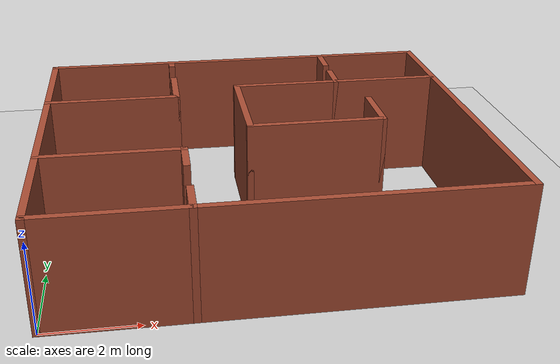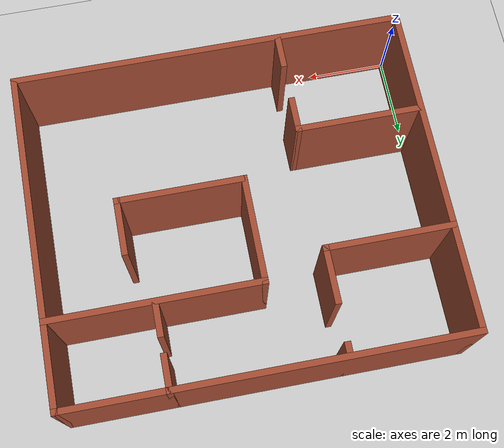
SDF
<sdf version="1.7">
 <world name="default">
  <light name="sun" type="directional">
   <pose>0 0 10 0 -0 0</pose>
   <diffuse>0.8 0.8 0.8 1</diffuse>
   <specular>0.2 0.2 0.2 1</specular>
   <attenuation>
    <range>1000</range>
    <constant>0.9</constant>
    <linear>0.01</linear>
    <quadratic>0.001</quadratic>
   </attenuation>
   <direction>-0.5 0.1 -0.9</direction>
   <spot><inner_angle>0</inner_angle><outer_angle>0</outer_angle><falloff>0</falloff></spot>
  </light>
  <model name="ground_plane">
   <static>1</static>
   <link name="link">
    <collision name="collision">
     <geometry><plane><normal>0 0 1</normal><size>100 100</size></plane></geometry>
     <surface>
      <contact><collide_bitmask>65535</collide_bitmask></contact>
      <friction><ode><mu>100</mu><mu2>50</mu2></ode></friction>
     </surface>
    </collision>
    <visual name="visual">
     <cast_shadows>0</cast_shadows>
     <geometry><plane><normal>0 0 1</normal><size>100 100</size></plane></geometry>
     <material>
      <script><uri>file://media/materials/scripts/gazebo.material</uri><name>Gazebo/Grey</name></script>
     </material>
    </visual>
   </link>
  </model>
  <gravity>0 0 -9.8</gravity>
  <magnetic_field>6e-06 2.3e-05 -4.2e-05</magnetic_field>
  <atmosphere type="adiabatic"/>
  <physics type="ode">
   <max_step_size>0.001</max_step_size>
   <real_time_factor>1</real_time_factor>
   <real_time_update_rate>1000</real_time_update_rate>
  </physics>
  <scene><ambient>0.4 0.4 0.4 1</ambient><background>0.7 0.7 0.7 1</background><shadows>1</shadows></scene>
  <spherical_coordinates>
   <surface_model>EARTH_WGS84</surface_model>
   <latitude_deg>0</latitude_deg>
   <longitude_deg>0</longitude_deg>
   <elevation>0</elevation>
   <heading_deg>0</heading_deg>
  </spherical_coordinates>
  <model name="rcp_building">
   <pose>4.75 4 0 0 -0 0</pose>
   <link name="Wall_11">
    <collision name="Wall_11_Collision">
     <geometry><box><size>9.65 0.15 2.5</size></box></geometry>
     <pose>0 0 1.25 0 -0 0</pose>
    </collision>
    <visual name="Wall_11_Visual">
     <pose>0 0 1.25 0 -0 0</pose>
     <geometry><box><size>9.65 0.15 2.5</size></box></geometry>
     <material>
      <script><uri>file://media/materials/scripts/gazebo.material</uri><name>Gazebo/Bricks</name></script>
      <ambient>1 1 1 1</ambient>
     </material>
     <meta><layer>0</layer></meta>
    </visual>
    <pose>-0 4 0 0 -0 0</pose>
   </link>
   <link name="Wall_12">
    <collision name="Wall_12_Collision">
     <geometry><box><size>8.15 0.15 2.5</size></box></geometry>
     <pose>0 0 1.25 0 -0 0</pose>
    </collision>
    <visual name="Wall_12_Visual">
     <pose>0 0 1.25 0 -0 0</pose>
     <geometry><box><size>8.15 0.15 2.5</size></box></geometry>
     <material>
      <script><uri>file://media/materials/scripts/gazebo.material</uri><name>Gazebo/Bricks</name></script>
      <ambient>1 1 1 1</ambient>
     </material>
     <meta><layer>0</layer></meta>
    </visual>
    <pose>4.75 -0 0 0 -0 -1.5708</pose>
   </link>
   <link name="Wall_13">
    <collision name="Wall_13_Collision">
     <geometry><box><size>9.65 0.15 2.5</size></box></geometry>
     <pose>0 0 1.25 0 -0 0</pose>
    </collision>
    <visual name="Wall_13_Visual">
     <pose>0 0 1.25 0 -0 0</pose>
     <geometry><box><size>9.65 0.15 2.5</size></box></geometry>
     <material>
      <script><uri>file://media/materials/scripts/gazebo.material</uri><name>Gazebo/Bricks</name></script>
      <ambient>1 1 1 1</ambient>
     </material>
     <meta><layer>0</layer></meta>
    </visual>
    <pose>-0 -4 0 0 -0 3.14159</pose>
   </link>
   <link name="Wall_15">
    <collision name="Wall_15_Collision">
     <geometry><box><size>3.15 0.15 2.5</size></box></geometry>
     <pose>0 0 1.25 0 -0 0</pose>
    </collision>
    <visual name="Wall_15_Visual">
     <pose>0 0 1.25 0 -0 0</pose>
     <geometry><box><size>3.15 0.15 2.5</size></box></geometry>
     <material>
      <script><uri>file://media/materials/scripts/gazebo.material</uri><name>Gazebo/Bricks</name></script>
      <ambient>1 1 1 1</ambient>
     </material>
     <meta><layer>0</layer></meta>
    </visual>
    <pose>-3.25 1.5 0 0 -0 0</pose>
   </link>
   <link name="Wall_16">
    <collision name="Wall_16_Collision">
     <geometry><box><size>1.4 0.15 2.5</size></box></geometry>
     <pose>0 0 1.25 0 -0 0</pose>
    </collision>
    <visual name="Wall_16_Visual">
     <pose>0 0 1.25 0 -0 0</pose>
     <geometry><box><size>1.4 0.15 2.5</size></box></geometry>
     <material>
      <script><uri>file://media/materials/scripts/gazebo.material</uri><name>Gazebo/Bricks</name></script>
      <ambient>1 1 1 1</ambient>
     </material>
     <meta><layer>0</layer></meta>
    </visual>
    <pose>-1.75 2.125 0 0 -0 1.5708</pose>
   </link>
   <link name="Wall_18">
    <collision name="Wall_18_Collision">
     <geometry><box><size>0.4 0.15 2.5</size></box></geometry>
     <pose>0 0 1.25 0 -0 0</pose>
    </collision>
    <visual name="Wall_18_Visual">
     <pose>0 0 1.25 0 -0 0</pose>
     <geometry><box><size>0.4 0.15 2.5</size></box></geometry>
     <material>
      <script><uri>file://media/materials/scripts/gazebo.material</uri><name>Gazebo/Bricks</name></script>
      <ambient>1 1 1 1</ambient>
     </material>
     <meta><layer>0</layer></meta>
    </visual>
    <pose>-1.75 3.875 0 0 -0 1.5708</pose>
   </link>
   <link name="Wall_20">
    <collision name="Wall_20_Collision">
     <geometry><box><size>0.9 0.15 2.5</size></box></geometry>
     <pose>0 0 1.25 0 -0 0</pose>
    </collision>
    <visual name="Wall_20_Visual">
     <pose>0 0 1.25 0 -0 0</pose>
     <geometry><box><size>0.9 0.15 2.5</size></box></geometry>
     <material>
      <script><uri>file://media/materials/scripts/gazebo.material</uri><name>Gazebo/Bricks</name></script>
      <ambient>1 1 1 1</ambient>
     </material>
     <meta><layer>0</layer></meta>
    </visual>
    <pose>2.25 3.625 0 0 -0 -1.5708</pose>
   </link>
   <link name="Wall_22">
    <collision name="Wall_22_Collision">
     <geometry><box><size>0.9 0.15 2.5</size></box></geometry>
     <pose>0 0 1.25 0 -0 0</pose>
    </collision>
    <visual name="Wall_22_Visual">
     <pose>0 0 1.25 0 -0 0</pose>
     <geometry><box><size>0.9 0.15 2.5</size></box></geometry>
     <material>
      <script><uri>file://media/materials/scripts/gazebo.material</uri><name>Gazebo/Bricks</name></script>
      <ambient>1 1 1 1</ambient>
     </material>
     <meta><layer>0</layer></meta>
    </visual>
    <pose>2.25 2.375 0 0 -0 -1.5708</pose>
   </link>
   <link name="Wall_24">
    <collision name="Wall_24_Collision">
     <geometry><box><size>5.15 0.15 2.5</size></box></geometry>
     <pose>0 0 1.25 0 -0 0</pose>
    </collision>
    <visual name="Wall_24_Visual">
     <pose>0 0 1.25 0 -0 0</pose>
     <geometry><box><size>5.15 0.15 2.5</size></box></geometry>
     <material>
      <script><uri>file://media/materials/scripts/gazebo.material</uri><name>Gazebo/Bricks</name></script>
      <ambient>1 1 1 1</ambient>
     </material>
     <meta><layer>0</layer></meta>
    </visual>
    <pose>2.25 2 0 0 -0 0</pose>
   </link>
   <link name="Wall_26">
    <collision name="Wall_26_Collision">
     <geometry><box><size>2.65 0.15 2.5</size></box></geometry>
     <pose>0 0 1.25 0 -0 0</pose>
    </collision>
    <visual name="Wall_26_Visual">
     <pose>0 0 1.25 0 -0 0</pose>
     <geometry><box><size>2.65 0.15 2.5</size></box></geometry>
     <material>
      <script><uri>file://media/materials/scripts/gazebo.material</uri><name>Gazebo/Bricks</name></script>
      <ambient>1 1 1 1</ambient>
     </material>
     <meta><layer>0</layer></meta>
    </visual>
    <pose>-0.25 0.75 0 0 -0 -1.5708</pose>
   </link>
   <link name="Wall_31">
    <collision name="Wall_31_Collision">
     <geometry><box><size>3.15 0.15 2.5</size></box></geometry>
     <pose>0 0 1.25 0 -0 0</pose>
    </collision>
    <visual name="Wall_31_Visual">
     <pose>0 0 1.25 0 -0 0</pose>
     <geometry><box><size>3.15 0.15 2.5</size></box></geometry>
     <material>
      <script><uri>file://media/materials/scripts/gazebo.material</uri><name>Gazebo/Bricks</name></script>
      <ambient>1 1 1 1</ambient>
     </material>
     <meta><layer>0</layer></meta>
    </visual>
    <pose>-3.25 -1.5 0 0 -0 0</pose>
   </link>
   <link name="Wall_34">
    <collision name="Wall_34_Collision">
     <geometry><box><size>0.9 0.15 2.5</size></box></geometry>
     <pose>0 0 1.25 0 -0 0</pose>
    </collision>
    <visual name="Wall_34_Visual">
     <pose>0 0 1.25 0 -0 0</pose>
     <geometry><box><size>0.9 0.15 2.5</size></box></geometry>
     <material>
      <script><uri>file://media/materials/scripts/gazebo.material</uri><name>Gazebo/Bricks</name></script>
      <ambient>1 1 1 1</ambient>
     </material>
     <meta><layer>0</layer></meta>
    </visual>
    <pose>-1.75 -3.625 0 0 -0 1.5708</pose>
   </link>
   <link name="Wall_36">
    <collision name="Wall_36_Collision">
     <geometry><box><size>0.9 0.15 2.5</size></box></geometry>
     <pose>0 0 1.25 0 -0 0</pose>
    </collision>
    <visual name="Wall_36_Visual">
     <pose>0 0 1.25 0 -0 0</pose>
     <geometry><box><size>0.9 0.15 2.5</size></box></geometry>
     <material>
      <script><uri>file://media/materials/scripts/gazebo.material</uri><name>Gazebo/Bricks</name></script>
      <ambient>1 1 1 1</ambient>
     </material>
     <meta><layer>0</layer></meta>
    </visual>
    <pose>-1.75 -1.875 0 0 -0 -1.5708</pose>
   </link>
   <link name="Wall_38">
    <collision name="Wall_38_Collision">
     <geometry><box><size>3.15077 0.15 2.5</size></box></geometry>
     <pose>0 0 1.25 0 -0 0</pose>
    </collision>
    <visual name="Wall_38_Visual">
     <pose>0 0 1.25 0 -0 0</pose>
     <geometry><box><size>3.15077 0.15 2.5</size></box></geometry>
     <material>
      <script><uri>file://media/materials/scripts/gazebo.material</uri><name>Gazebo/Bricks</name></script>
      <ambient>1 1 1 1</ambient>
     </material>
     <meta><layer>0</layer></meta>
    </visual>
    <pose>1.25 -0.5 0 0 -0 0</pose>
   </link>
   <link name="Wall_40">
    <collision name="Wall_40_Collision">
     <geometry><box><size>1.4 0.15 2.5</size></box></geometry>
     <pose>0 0 1.25 0 -0 0</pose>
    </collision>
    <visual name="Wall_40_Visual">
     <pose>0 0 1.25 0 -0 0</pose>
     <geometry><box><size>1.4 0.15 2.5</size></box></geometry>
     <material>
      <script><uri>file://media/materials/scripts/gazebo.material</uri><name>Gazebo/Bricks</name></script>
      <ambient>1 1 1 1</ambient>
     </material>
     <meta><layer>0</layer></meta>
    </visual>
    <pose>2.75 0.125 0 0 -0 1.5708</pose>
   </link>
   <link name="Wall_9">
    <collision name="Wall_9_Collision">
     <geometry><box><size>8.15 0.15 2.5</size></box></geometry>
     <pose>0 0 1.25 0 -0 0</pose>
    </collision>
    <visual name="Wall_9_Visual">
     <pose>0 0 1.25 0 -0 0</pose>
     <geometry><box><size>8.15 0.15 2.5</size></box></geometry>
     <material>
      <script><uri>file://media/materials/scripts/gazebo.material</uri><name>Gazebo/Bricks</name></script>
      <ambient>1 1 1 1</ambient>
     </material>
     <meta><layer>0</layer></meta>
    </visual>
    <pose>-4.75 -0 0 0 -0 1.5708</pose>
   </link>
   <static>1</static>
  </model>
  <light name="user_spot_light_0" type="spot">
   <pose>3.71386 4.15325 1 0 -0 0</pose>
   <diffuse>0.5 0.5 0.5 1</diffuse>
   <specular>0.1 0.1 0.1 1</specular>
   <direction>0 0 -1</direction>
   <attenuation>
    <range>20</range>
    <constant>0.5</constant>
    <linear>0.01</linear>
    <quadratic>0.001</quadratic>
   </attenuation>
   <cast_shadows>0</cast_shadows>
   <spot><inner_angle>0.6</inner_angle><outer_angle>1</outer_angle><falloff>1</falloff></spot>
  </light>
 </world>
</sdf>
